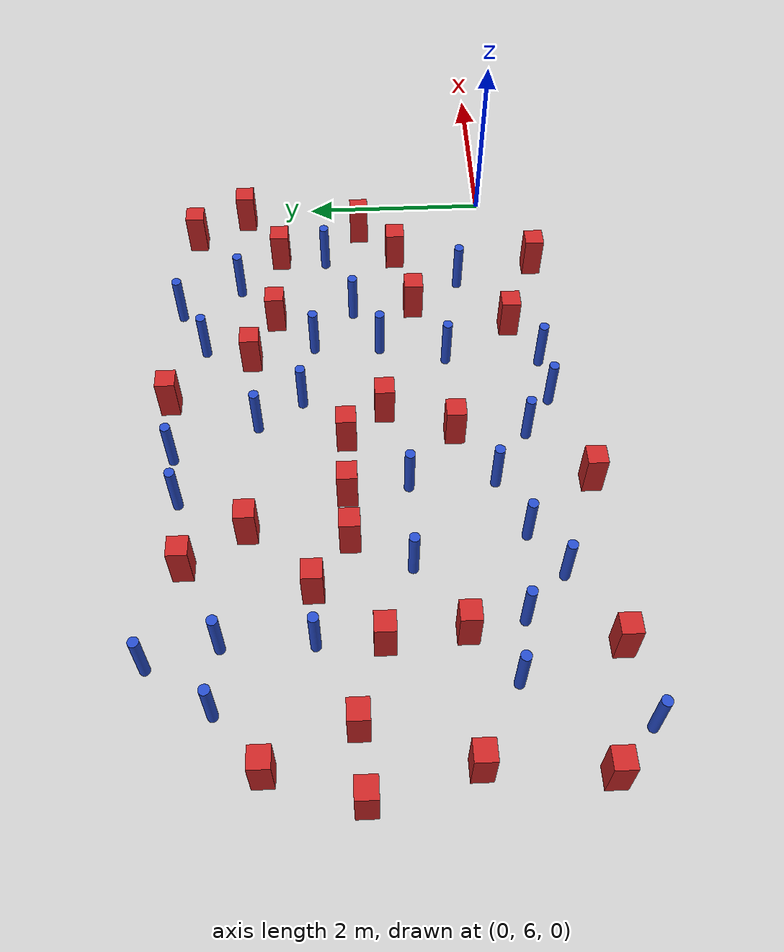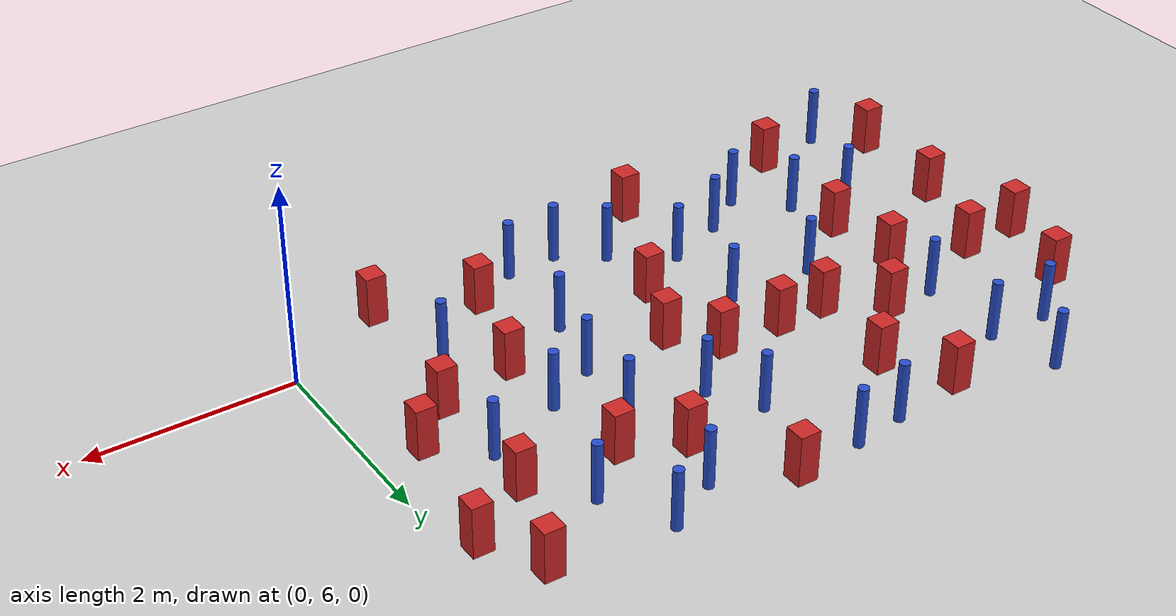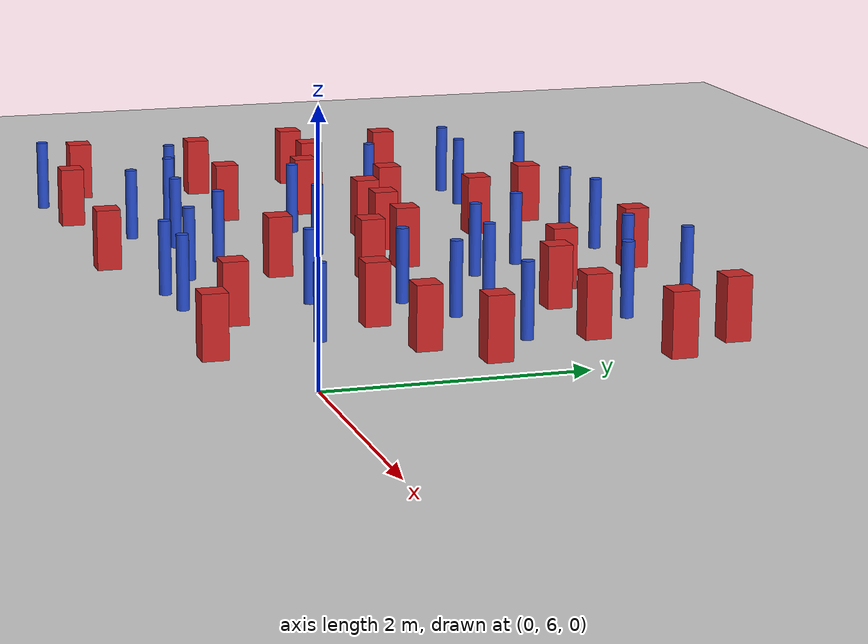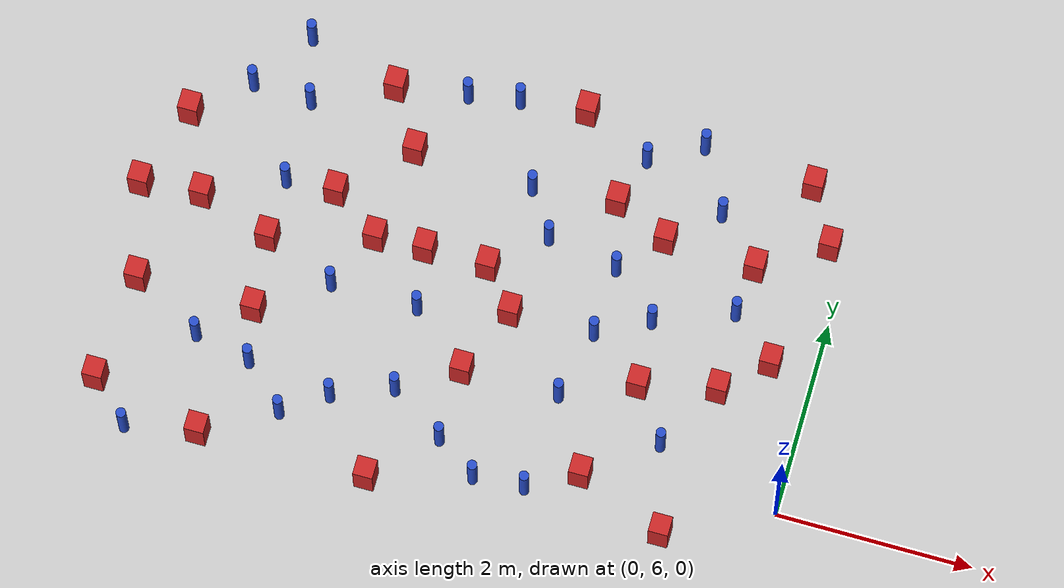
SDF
<sdf version="1.6">
 <world name="default">
  <model name="ground_plane">
   <static>1</static>
   <link name="link">
    <collision name="collision">
     <geometry><plane><normal>0 0 1</normal><size>100 100</size></plane></geometry>
     <surface><friction><ode><mu>100</mu><mu2>50</mu2></ode></friction></surface>
    </collision>
    <visual name="visual">
     <cast_shadows>0</cast_shadows>
     <geometry><plane><normal>0 0 1</normal><size>100 100</size></plane></geometry>
     <material>
      <ambient>1.0 1.0 1.0 1.0</ambient>
      <diffuse>0.8 0.8 0.8 1.0</diffuse>
      <specular>0.01 0.01 0.01 1.000000</specular>
     </material>
    </visual>
   </link>
  </model>
  <model name="square_post_obstacle1">
   <static>true</static>
   <pose>-1.95325736225 5.85002496531 1.91545236811e-07 -7.35059704564e-06 1.12565212e-07 2.39332434364e-05</pose>
   <link name="link">
    <pose>0 0 0.25 0 -0 0</pose>
    <inertial>
     <mass>100</mass>
     <inertia>
      <ixx>0.166667</ixx>
      <ixy>0</ixy>
      <ixz>0</ixz>
      <iyy>0.166667</iyy>
      <iyz>0</iyz>
      <izz>0.166667</izz>
     </inertia>
    </inertial>
    <collision name="collision"><geometry><box><size>.2 .2 .5</size></box></geometry></collision>
    <visual name="visual">
     <geometry><box><size>.2 .2 .5</size></box></geometry>
     <material>
      <script><name>Gazebo/Red</name><uri>file://media/materials/scripts/gazebo.material</uri></script>
     </material>
    </visual>
   </link>
  </model>
  <model name="pole_obstacle1">
   <static>true</static>
   <pose>-2.45084201974 5.56944698751 7.38925637345e-09 -8.47170692798e-08 1.24976765033e-08 -1.74513093019e-07</pose>
   <link name="link">
    <pose>0 0 0.3 0 -0 0</pose>
    <inertial>
     <mass>1</mass>
     <inertia><ixx>0.145833</ixx><ixy>0</ixy><ixz>0</ixz><iyy>0.145833</iyy><iyz>0</iyz><izz>0.125</izz></inertia>
    </inertial>
    <collision name="collision">
     <geometry><cylinder><radius>0.05</radius><length>.6</length></cylinder></geometry>
    </collision>
    <visual name="visual">
     <geometry><cylinder><radius>0.05</radius><length>.6</length></cylinder></geometry>
     <material>
      <script><name>Gazebo/Blue</name><uri>file://media/materials/scripts/gazebo.material</uri></script>
     </material>
    </visual>
   </link>
  </model>
  <model name="square_post_obstacle3">
   <static>true</static>
   <pose>-6.8255019403 5.52040594219 1.91545236811e-07 -7.35059704564e-06 1.12565212e-07 2.39332434364e-05</pose>
   <link name="link">
    <pose>0 0 0.25 0 -0 0</pose>
    <inertial>
     <mass>100</mass>
     <inertia>
      <ixx>0.166667</ixx>
      <ixy>0</ixy>
      <ixz>0</ixz>
      <iyy>0.166667</iyy>
      <iyz>0</iyz>
      <izz>0.166667</izz>
     </inertia>
    </inertial>
    <collision name="collision"><geometry><box><size>.2 .2 .5</size></box></geometry></collision>
    <visual name="visual">
     <geometry><box><size>.2 .2 .5</size></box></geometry>
     <material>
      <script><name>Gazebo/Red</name><uri>file://media/materials/scripts/gazebo.material</uri></script>
     </material>
    </visual>
   </link>
  </model>
  <model name="square_post_obstacle7">
   <static>true</static>
   <pose>-1.78532070272 8.3839280354 1.91545236811e-07 -7.35059704564e-06 1.12565212e-07 2.39332434364e-05</pose>
   <link name="link">
    <pose>0 0 0.25 0 -0 0</pose>
    <inertial>
     <mass>100</mass>
     <inertia>
      <ixx>0.166667</ixx>
      <ixy>0</ixy>
      <ixz>0</ixz>
      <iyy>0.166667</iyy>
      <iyz>0</iyz>
      <izz>0.166667</izz>
     </inertia>
    </inertial>
    <collision name="collision"><geometry><box><size>.2 .2 .5</size></box></geometry></collision>
    <visual name="visual">
     <geometry><box><size>.2 .2 .5</size></box></geometry>
     <material>
      <script><name>Gazebo/Red</name><uri>file://media/materials/scripts/gazebo.material</uri></script>
     </material>
    </visual>
   </link>
  </model>
  <model name="square_post_obstacle8">
   <static>true</static>
   <pose>-4.5635573513 7.63697502963 1.91545236811e-07 -7.35059704564e-06 1.12565212e-07 2.39332434364e-05</pose>
   <link name="link">
    <pose>0 0 0.25 0 -0 0</pose>
    <inertial>
     <mass>100</mass>
     <inertia>
      <ixx>0.166667</ixx>
      <ixy>0</ixy>
      <ixz>0</ixz>
      <iyy>0.166667</iyy>
      <iyz>0</iyz>
      <izz>0.166667</izz>
     </inertia>
    </inertial>
    <collision name="collision"><geometry><box><size>.2 .2 .5</size></box></geometry></collision>
    <visual name="visual">
     <geometry><box><size>.2 .2 .5</size></box></geometry>
     <material>
      <script><name>Gazebo/Red</name><uri>file://media/materials/scripts/gazebo.material</uri></script>
     </material>
    </visual>
   </link>
  </model>
  <model name="square_post_obstacle16">
   <static>true</static>
   <pose>-6.69537280962 8.40024844896 1.91545236811e-07 -7.35059704564e-06 1.12565212e-07 2.39332434364e-05</pose>
   <link name="link">
    <pose>0 0 0.25 0 -0 0</pose>
    <inertial>
     <mass>100</mass>
     <inertia>
      <ixx>0.166667</ixx>
      <ixy>0</ixy>
      <ixz>0</ixz>
      <iyy>0.166667</iyy>
      <iyz>0</iyz>
      <izz>0.166667</izz>
     </inertia>
    </inertial>
    <collision name="collision"><geometry><box><size>.2 .2 .5</size></box></geometry></collision>
    <visual name="visual">
     <geometry><box><size>.2 .2 .5</size></box></geometry>
     <material>
      <script><name>Gazebo/Red</name><uri>file://media/materials/scripts/gazebo.material</uri></script>
     </material>
    </visual>
   </link>
  </model>
  <model name="pole_obstacle20">
   <static>true</static>
   <pose>-2.90265520833 8.0927579224 7.38925637345e-09 -8.47170692793e-08 1.24976764408e-08 -1.74513093041e-07</pose>
   <link name="link">
    <pose>0 0 0.3 0 -0 0</pose>
    <inertial>
     <mass>1</mass>
     <inertia><ixx>0.145833</ixx><ixy>0</ixy><ixz>0</ixz><iyy>0.145833</iyy><iyz>0</iyz><izz>0.125</izz></inertia>
    </inertial>
    <collision name="collision">
     <geometry><cylinder><radius>0.05</radius><length>.6</length></cylinder></geometry>
    </collision>
    <visual name="visual">
     <geometry><cylinder><radius>0.05</radius><length>.6</length></cylinder></geometry>
     <material>
      <script><name>Gazebo/Blue</name><uri>file://media/materials/scripts/gazebo.material</uri></script>
     </material>
    </visual>
   </link>
  </model>
  <model name="pole_obstacle22">
   <static>true</static>
   <pose>-4.85426224401 7.05742693724 7.38925637345e-09 -8.47170692796e-08 1.24976764786e-08 -1.74513093032e-07</pose>
   <link name="link">
    <pose>0 0 0.3 0 -0 0</pose>
    <inertial>
     <mass>1</mass>
     <inertia><ixx>0.145833</ixx><ixy>0</ixy><ixz>0</ixz><iyy>0.145833</iyy><iyz>0</iyz><izz>0.125</izz></inertia>
    </inertial>
    <collision name="collision">
     <geometry><cylinder><radius>0.05</radius><length>.6</length></cylinder></geometry>
    </collision>
    <visual name="visual">
     <geometry><cylinder><radius>0.05</radius><length>.6</length></cylinder></geometry>
     <material>
      <script><name>Gazebo/Blue</name><uri>file://media/materials/scripts/gazebo.material</uri></script>
     </material>
    </visual>
   </link>
  </model>
  <model name="square_post_obstacle38">
   <static>true</static>
   <pose>-3.36489635111 6.5540317531 1.91545236811e-07 -7.35059704564e-06 1.12565212e-07 2.39332434364e-05</pose>
   <link name="link">
    <pose>0 0 0.25 0 -0 0</pose>
    <inertial>
     <mass>100</mass>
     <inertia>
      <ixx>0.166667</ixx>
      <ixy>0</ixy>
      <ixz>0</ixz>
      <iyy>0.166667</iyy>
      <iyz>0</iyz>
      <izz>0.166667</izz>
     </inertia>
    </inertial>
    <collision name="collision"><geometry><box><size>.2 .2 .5</size></box></geometry></collision>
    <visual name="visual">
     <geometry><box><size>.2 .2 .5</size></box></geometry>
     <material>
      <script><name>Gazebo/Red</name><uri>file://media/materials/scripts/gazebo.material</uri></script>
     </material>
    </visual>
   </link>
  </model>
  <model name="square_post_obstacle42">
   <static>true</static>
   <pose>-0.878070782256 7.04222129873 1.91545236811e-07 -7.35059704564e-06 1.12565212e-07 2.39332434364e-05</pose>
   <link name="link">
    <pose>0 0 0.25 0 -0 0</pose>
    <inertial>
     <mass>100</mass>
     <inertia>
      <ixx>0.166667</ixx>
      <ixy>0</ixy>
      <ixz>0</ixz>
      <iyy>0.166667</iyy>
      <iyz>0</iyz>
      <izz>0.166667</izz>
     </inertia>
    </inertial>
    <collision name="collision"><geometry><box><size>.2 .2 .5</size></box></geometry></collision>
    <visual name="visual">
     <geometry><box><size>.2 .2 .5</size></box></geometry>
     <material>
      <script><name>Gazebo/Red</name><uri>file://media/materials/scripts/gazebo.material</uri></script>
     </material>
    </visual>
   </link>
  </model>
  <model name="square_post_obstacle56">
   <static>true</static>
   <pose>-0.449807353054 7.44160900738 1.91545236811e-07 -7.35059704564e-06 1.12565212e-07 2.39332434364e-05</pose>
   <link name="link">
    <pose>0 0 0.25 0 -0 0</pose>
    <inertial>
     <mass>100</mass>
     <inertia>
      <ixx>0.166667</ixx>
      <ixy>0</ixy>
      <ixz>0</ixz>
      <iyy>0.166667</iyy>
      <iyz>0</iyz>
      <izz>0.166667</izz>
     </inertia>
    </inertial>
    <collision name="collision"><geometry><box><size>.2 .2 .5</size></box></geometry></collision>
    <visual name="visual">
     <geometry><box><size>.2 .2 .5</size></box></geometry>
     <material>
      <script><name>Gazebo/Red</name><uri>file://media/materials/scripts/gazebo.material</uri></script>
     </material>
    </visual>
   </link>
  </model>
  <model name="pole_obstacle53">
   <static>true</static>
   <pose>-2.17609621883 7.96631538438 7.38925637345e-09 -8.47170692799e-08 1.24976765031e-08 -1.7451309302e-07</pose>
   <link name="link">
    <pose>0 0 0.3 0 -0 0</pose>
    <inertial>
     <mass>1</mass>
     <inertia><ixx>0.145833</ixx><ixy>0</ixy><ixz>0</ixz><iyy>0.145833</iyy><iyz>0</iyz><izz>0.125</izz></inertia>
    </inertial>
    <collision name="collision">
     <geometry><cylinder><radius>0.05</radius><length>.6</length></cylinder></geometry>
    </collision>
    <visual name="visual">
     <geometry><cylinder><radius>0.05</radius><length>.6</length></cylinder></geometry>
     <material>
      <script><name>Gazebo/Blue</name><uri>file://media/materials/scripts/gazebo.material</uri></script>
     </material>
    </visual>
   </link>
  </model>
  <model name="pole_obstacle58">
   <static>true</static>
   <pose>-5.99651637765 6.20297203327 7.38925637345e-09 -8.47170692796e-08 1.24976764786e-08 -1.74513093032e-07</pose>
   <link name="link">
    <pose>0 0 0.3 0 -0 0</pose>
    <inertial>
     <mass>1</mass>
     <inertia><ixx>0.145833</ixx><ixy>0</ixy><ixz>0</ixz><iyy>0.145833</iyy><iyz>0</iyz><izz>0.125</izz></inertia>
    </inertial>
    <collision name="collision">
     <geometry><cylinder><radius>0.05</radius><length>.6</length></cylinder></geometry>
    </collision>
    <visual name="visual">
     <geometry><cylinder><radius>0.05</radius><length>.6</length></cylinder></geometry>
     <material>
      <script><name>Gazebo/Blue</name><uri>file://media/materials/scripts/gazebo.material</uri></script>
     </material>
    </visual>
   </link>
  </model>
  <model name="pole_obstacle62">
   <static>true</static>
   <pose>-3.94933037781 6.19198998992 7.38925637345e-09 -8.47170692794e-08 1.24976764468e-08 -1.7451309304e-07</pose>
   <link name="link">
    <pose>0 0 0.3 0 -0 0</pose>
    <inertial>
     <mass>1</mass>
     <inertia><ixx>0.145833</ixx><ixy>0</ixy><ixz>0</ixz><iyy>0.145833</iyy><iyz>0</iyz><izz>0.125</izz></inertia>
    </inertial>
    <collision name="collision">
     <geometry><cylinder><radius>0.05</radius><length>.6</length></cylinder></geometry>
    </collision>
    <visual name="visual">
     <geometry><cylinder><radius>0.05</radius><length>.6</length></cylinder></geometry>
     <material>
      <script><name>Gazebo/Blue</name><uri>file://media/materials/scripts/gazebo.material</uri></script>
     </material>
    </visual>
   </link>
  </model>
  <model name="square_post_obstacle67">
   <static>true</static>
   <pose>-0.851390226316 8.34495814027 1.91545236811e-07 -7.35059704564e-06 1.12565212e-07 2.39332434364e-05</pose>
   <link name="link">
    <pose>0 0 0.25 0 -0 0</pose>
    <inertial>
     <mass>100</mass>
     <inertia>
      <ixx>0.166667</ixx>
      <ixy>0</ixy>
      <ixz>0</ixz>
      <iyy>0.166667</iyy>
      <iyz>0</iyz>
      <izz>0.166667</izz>
     </inertia>
    </inertial>
    <collision name="collision"><geometry><box><size>.2 .2 .5</size></box></geometry></collision>
    <visual name="visual">
     <geometry><box><size>.2 .2 .5</size></box></geometry>
     <material>
      <script><name>Gazebo/Red</name><uri>file://media/materials/scripts/gazebo.material</uri></script>
     </material>
    </visual>
   </link>
  </model>
  <model name="pole_obstacle67">
   <static>true</static>
   <pose>-3.38901248422 5.82271786152 7.38925637345e-09 -8.47170692798e-08 1.24976765033e-08 -1.74513093019e-07</pose>
   <link name="link">
    <pose>0 0 0.3 0 -0 0</pose>
    <inertial>
     <mass>1</mass>
     <inertia><ixx>0.145833</ixx><ixy>0</ixy><ixz>0</ixz><iyy>0.145833</iyy><iyz>0</iyz><izz>0.125</izz></inertia>
    </inertial>
    <collision name="collision">
     <geometry><cylinder><radius>0.05</radius><length>.6</length></cylinder></geometry>
    </collision>
    <visual name="visual">
     <geometry><cylinder><radius>0.05</radius><length>.6</length></cylinder></geometry>
     <material>
      <script><name>Gazebo/Blue</name><uri>file://media/materials/scripts/gazebo.material</uri></script>
     </material>
    </visual>
   </link>
  </model>
  <model name="square_post_obstacle78">
   <static>true</static>
   <pose>-3.06652978352 7.25143272821 1.91545236811e-07 -7.35059704564e-06 1.12565212e-07 2.39332434364e-05</pose>
   <link name="link">
    <pose>0 0 0.25 0 -0 0</pose>
    <inertial>
     <mass>100</mass>
     <inertia>
      <ixx>0.166667</ixx>
      <ixy>0</ixy>
      <ixz>0</ixz>
      <iyy>0.166667</iyy>
      <iyz>0</iyz>
      <izz>0.166667</izz>
     </inertia>
    </inertial>
    <collision name="collision"><geometry><box><size>.2 .2 .5</size></box></geometry></collision>
    <visual name="visual">
     <geometry><box><size>.2 .2 .5</size></box></geometry>
     <material>
      <script><name>Gazebo/Red</name><uri>file://media/materials/scripts/gazebo.material</uri></script>
     </material>
    </visual>
   </link>
  </model>
  <model name="pole_obstacle84">
   <static>true</static>
   <pose>-4.98611328214 5.66036942069 7.38925637345e-09 -8.47170692796e-08 1.24976764786e-08 -1.74513093032e-07</pose>
   <link name="link">
    <pose>0 0 0.3 0 -0 0</pose>
    <inertial>
     <mass>1</mass>
     <inertia><ixx>0.145833</ixx><ixy>0</ixy><ixz>0</ixz><iyy>0.145833</iyy><iyz>0</iyz><izz>0.125</izz></inertia>
    </inertial>
    <collision name="collision">
     <geometry><cylinder><radius>0.05</radius><length>.6</length></cylinder></geometry>
    </collision>
    <visual name="visual">
     <geometry><cylinder><radius>0.05</radius><length>.6</length></cylinder></geometry>
     <material>
      <script><name>Gazebo/Blue</name><uri>file://media/materials/scripts/gazebo.material</uri></script>
     </material>
    </visual>
   </link>
  </model>
  <model name="pole_obstacle99">
   <static>true</static>
   <pose>-3.19912108964 8.54629579582 7.38925637345e-09 -8.47170692793e-08 1.24976764408e-08 -1.74513093041e-07</pose>
   <link name="link">
    <pose>0 0 0.3 0 -0 0</pose>
    <inertial>
     <mass>1</mass>
     <inertia><ixx>0.145833</ixx><ixy>0</ixy><ixz>0</ixz><iyy>0.145833</iyy><iyz>0</iyz><izz>0.125</izz></inertia>
    </inertial>
    <collision name="collision">
     <geometry><cylinder><radius>0.05</radius><length>.6</length></cylinder></geometry>
    </collision>
    <visual name="visual">
     <geometry><cylinder><radius>0.05</radius><length>.6</length></cylinder></geometry>
     <material>
      <script><name>Gazebo/Blue</name><uri>file://media/materials/scripts/gazebo.material</uri></script>
     </material>
    </visual>
   </link>
  </model>
  <model name="pole_obstacle100">
   <static>true</static>
   <pose>-3.96489721537 7.04676653271 7.38925637345e-09 -8.471706928e-08 1.24976765147e-08 -1.74513093014e-07</pose>
   <link name="link">
    <pose>0 0 0.3 0 -0 0</pose>
    <inertial>
     <mass>1</mass>
     <inertia><ixx>0.145833</ixx><ixy>0</ixy><ixz>0</ixz><iyy>0.145833</iyy><iyz>0</iyz><izz>0.125</izz></inertia>
    </inertial>
    <collision name="collision">
     <geometry><cylinder><radius>0.05</radius><length>.6</length></cylinder></geometry>
    </collision>
    <visual name="visual">
     <geometry><cylinder><radius>0.05</radius><length>.6</length></cylinder></geometry>
     <material>
      <script><name>Gazebo/Blue</name><uri>file://media/materials/scripts/gazebo.material</uri></script>
     </material>
    </visual>
   </link>
  </model>
  <model name="square_post_obstacle89">
   <static>true</static>
   <pose>-4.79048570503 9.1884379406 1.91545236811e-07 -7.35059704564e-06 1.12565212e-07 2.39332434364e-05</pose>
   <link name="link">
    <pose>0 0 0.25 0 -0 0</pose>
    <inertial>
     <mass>100</mass>
     <inertia>
      <ixx>0.166667</ixx>
      <ixy>0</ixy>
      <ixz>0</ixz>
      <iyy>0.166667</iyy>
      <iyz>0</iyz>
      <izz>0.166667</izz>
     </inertia>
    </inertial>
    <collision name="collision"><geometry><box><size>.2 .2 .5</size></box></geometry></collision>
    <visual name="visual">
     <geometry><box><size>.2 .2 .5</size></box></geometry>
     <material>
      <script><name>Gazebo/Red</name><uri>file://media/materials/scripts/gazebo.material</uri></script>
     </material>
    </visual>
   </link>
  </model>
  <model name="square_post_obstacle94">
   <static>true</static>
   <pose>-1.64861381105 6.87692610729 1.91545236811e-07 -7.35059704564e-06 1.12565212e-07 2.39332434364e-05</pose>
   <link name="link">
    <pose>0 0 0.25 0 -0 0</pose>
    <inertial>
     <mass>100</mass>
     <inertia>
      <ixx>0.166667</ixx>
      <ixy>0</ixy>
      <ixz>0</ixz>
      <iyy>0.166667</iyy>
      <iyz>0</iyz>
      <izz>0.166667</izz>
     </inertia>
    </inertial>
    <collision name="collision"><geometry><box><size>.2 .2 .5</size></box></geometry></collision>
    <visual name="visual">
     <geometry><box><size>.2 .2 .5</size></box></geometry>
     <material>
      <script><name>Gazebo/Red</name><uri>file://media/materials/scripts/gazebo.material</uri></script>
     </material>
    </visual>
   </link>
  </model>
  <model name="square_post_obstacle98">
   <static>true</static>
   <pose>-4.43006646898 8.60576593966 1.91545236811e-07 -7.35059704564e-06 1.12565212e-07 2.39332434364e-05</pose>
   <link name="link">
    <pose>0 0 0.25 0 -0 0</pose>
    <inertial>
     <mass>100</mass>
     <inertia>
      <ixx>0.166667</ixx>
      <ixy>0</ixy>
      <ixz>0</ixz>
      <iyy>0.166667</iyy>
      <iyz>0</iyz>
      <izz>0.166667</izz>
     </inertia>
    </inertial>
    <collision name="collision"><geometry><box><size>.2 .2 .5</size></box></geometry></collision>
    <visual name="visual">
     <geometry><box><size>.2 .2 .5</size></box></geometry>
     <material>
      <script><name>Gazebo/Red</name><uri>file://media/materials/scripts/gazebo.material</uri></script>
     </material>
    </visual>
   </link>
  </model>
  <model name="pole_obstacle115">
   <static>true</static>
   <pose>-2.96861705959 5.53677465467 7.38925637345e-09 -8.47170692798e-08 1.24976765033e-08 -1.74513093019e-07</pose>
   <link name="link">
    <pose>0 0 0.3 0 -0 0</pose>
    <inertial>
     <mass>1</mass>
     <inertia><ixx>0.145833</ixx><ixy>0</ixy><ixz>0</ixz><iyy>0.145833</iyy><iyz>0</iyz><izz>0.125</izz></inertia>
    </inertial>
    <collision name="collision">
     <geometry><cylinder><radius>0.05</radius><length>.6</length></cylinder></geometry>
    </collision>
    <visual name="visual">
     <geometry><cylinder><radius>0.05</radius><length>.6</length></cylinder></geometry>
     <material>
      <script><name>Gazebo/Blue</name><uri>file://media/materials/scripts/gazebo.material</uri></script>
     </material>
    </visual>
   </link>
  </model>
  <model name="square_post_obstacle102">
   <static>true</static>
   <pose>-1.04320564459 5.48591085215 1.91545236811e-07 -7.35059704564e-06 1.12565212e-07 2.39332434364e-05</pose>
   <link name="link">
    <pose>0 0 0.25 0 -0 0</pose>
    <inertial>
     <mass>100</mass>
     <inertia>
      <ixx>0.166667</ixx>
      <ixy>0</ixy>
      <ixz>0</ixz>
      <iyy>0.166667</iyy>
      <iyz>0</iyz>
      <izz>0.166667</izz>
     </inertia>
    </inertial>
    <collision name="collision"><geometry><box><size>.2 .2 .5</size></box></geometry></collision>
    <visual name="visual">
     <geometry><box><size>.2 .2 .5</size></box></geometry>
     <material>
      <script><name>Gazebo/Red</name><uri>file://media/materials/scripts/gazebo.material</uri></script>
     </material>
    </visual>
   </link>
  </model>
  <model name="square_post_obstacle104">
   <static>true</static>
   <pose>-5.70126849819 5.25448050112 1.91545236811e-07 -7.35059704564e-06 1.12565212e-07 2.39332434364e-05</pose>
   <link name="link">
    <pose>0 0 0.25 0 -0 0</pose>
    <inertial>
     <mass>100</mass>
     <inertia>
      <ixx>0.166667</ixx>
      <ixy>0</ixy>
      <ixz>0</ixz>
      <iyy>0.166667</iyy>
      <iyz>0</iyz>
      <izz>0.166667</izz>
     </inertia>
    </inertial>
    <collision name="collision"><geometry><box><size>.2 .2 .5</size></box></geometry></collision>
    <visual name="visual">
     <geometry><box><size>.2 .2 .5</size></box></geometry>
     <material>
      <script><name>Gazebo/Red</name><uri>file://media/materials/scripts/gazebo.material</uri></script>
     </material>
    </visual>
   </link>
  </model>
  <model name="square_post_obstacle107">
   <static>true</static>
   <pose>-6.71844986702 6.60887199454 1.91545236811e-07 -7.35059704564e-06 1.12565212e-07 2.39332434364e-05</pose>
   <link name="link">
    <pose>0 0 0.25 0 -0 0</pose>
    <inertial>
     <mass>100</mass>
     <inertia>
      <ixx>0.166667</ixx>
      <ixy>0</ixy>
      <ixz>0</ixz>
      <iyy>0.166667</iyy>
      <iyz>0</iyz>
      <izz>0.166667</izz>
     </inertia>
    </inertial>
    <collision name="collision"><geometry><box><size>.2 .2 .5</size></box></geometry></collision>
    <visual name="visual">
     <geometry><box><size>.2 .2 .5</size></box></geometry>
     <material>
      <script><name>Gazebo/Red</name><uri>file://media/materials/scripts/gazebo.material</uri></script>
     </material>
    </visual>
   </link>
  </model>
  <model name="pole_obstacle126">
   <static>true</static>
   <pose>-2.37767435409 6.56397256656 7.38925637345e-09 -8.47170692798e-08 1.24976765033e-08 -1.74513093019e-07</pose>
   <link name="link">
    <pose>0 0 0.3 0 -0 0</pose>
    <inertial>
     <mass>1</mass>
     <inertia><ixx>0.145833</ixx><ixy>0</ixy><ixz>0</ixz><iyy>0.145833</iyy><iyz>0</iyz><izz>0.125</izz></inertia>
    </inertial>
    <collision name="collision">
     <geometry><cylinder><radius>0.05</radius><length>.6</length></cylinder></geometry>
    </collision>
    <visual name="visual">
     <geometry><cylinder><radius>0.05</radius><length>.6</length></cylinder></geometry>
     <material>
      <script><name>Gazebo/Blue</name><uri>file://media/materials/scripts/gazebo.material</uri></script>
     </material>
    </visual>
   </link>
  </model>
  <model name="square_post_obstacle116">
   <static>true</static>
   <pose>-0.197021590138 8.7569889888 1.91545236811e-07 -7.35059704564e-06 1.12565212e-07 2.39332434364e-05</pose>
   <link name="link">
    <pose>0 0 0.25 0 -0 0</pose>
    <inertial>
     <mass>100</mass>
     <inertia>
      <ixx>0.166667</ixx>
      <ixy>0</ixy>
      <ixz>0</ixz>
      <iyy>0.166667</iyy>
      <iyz>0</iyz>
      <izz>0.166667</izz>
     </inertia>
    </inertial>
    <collision name="collision"><geometry><box><size>.2 .2 .5</size></box></geometry></collision>
    <visual name="visual">
     <geometry><box><size>.2 .2 .5</size></box></geometry>
     <material>
      <script><name>Gazebo/Red</name><uri>file://media/materials/scripts/gazebo.material</uri></script>
     </material>
    </visual>
   </link>
  </model>
  <model name="square_post_obstacle118">
   <static>true</static>
   <pose>-6.96458356621 7.55827440751 1.91545236811e-07 -7.35059704564e-06 1.12565212e-07 2.39332434364e-05</pose>
   <link name="link">
    <pose>0 0 0.25 0 -0 0</pose>
    <inertial>
     <mass>100</mass>
     <inertia>
      <ixx>0.166667</ixx>
      <ixy>0</ixy>
      <ixz>0</ixz>
      <iyy>0.166667</iyy>
      <iyz>0</iyz>
      <izz>0.166667</izz>
     </inertia>
    </inertial>
    <collision name="collision"><geometry><box><size>.2 .2 .5</size></box></geometry></collision>
    <visual name="visual">
     <geometry><box><size>.2 .2 .5</size></box></geometry>
     <material>
      <script><name>Gazebo/Red</name><uri>file://media/materials/scripts/gazebo.material</uri></script>
     </material>
    </visual>
   </link>
  </model>
  <model name="pole_obstacle137">
   <static>true</static>
   <pose>-2.21173117754 7.26631993955 7.38925637345e-09 -8.47170692798e-08 1.24976765033e-08 -1.74513093019e-07</pose>
   <link name="link">
    <pose>0 0 0.3 0 -0 0</pose>
    <inertial>
     <mass>1</mass>
     <inertia><ixx>0.145833</ixx><ixy>0</ixy><ixz>0</ixz><iyy>0.145833</iyy><iyz>0</iyz><izz>0.125</izz></inertia>
    </inertial>
    <collision name="collision">
     <geometry><cylinder><radius>0.05</radius><length>.6</length></cylinder></geometry>
    </collision>
    <visual name="visual">
     <geometry><cylinder><radius>0.05</radius><length>.6</length></cylinder></geometry>
     <material>
      <script><name>Gazebo/Blue</name><uri>file://media/materials/scripts/gazebo.material</uri></script>
     </material>
    </visual>
   </link>
  </model>
  <model name="square_post_obstacle128">
   <static>true</static>
   <pose>-3.97936162897 5.25920833258 1.91545236811e-07 -7.35059704564e-06 1.12565212e-07 2.39332434364e-05</pose>
   <link name="link">
    <pose>0 0 0.25 0 -0 0</pose>
    <inertial>
     <mass>100</mass>
     <inertia>
      <ixx>0.166667</ixx>
      <ixy>0</ixy>
      <ixz>0</ixz>
      <iyy>0.166667</iyy>
      <iyz>0</iyz>
      <izz>0.166667</izz>
     </inertia>
    </inertial>
    <collision name="collision"><geometry><box><size>.2 .2 .5</size></box></geometry></collision>
    <visual name="visual">
     <geometry><box><size>.2 .2 .5</size></box></geometry>
     <material>
      <script><name>Gazebo/Red</name><uri>file://media/materials/scripts/gazebo.material</uri></script>
     </material>
    </visual>
   </link>
  </model>
  <model name="square_post_obstacle129">
   <static>true</static>
   <pose>-5.59324449979 7.35337747903 1.91545236811e-07 -7.35059704564e-06 1.12565212e-07 2.39332434364e-05</pose>
   <link name="link">
    <pose>0 0 0.25 0 -0 0</pose>
    <inertial>
     <mass>100</mass>
     <inertia>
      <ixx>0.166667</ixx>
      <ixy>0</ixy>
      <ixz>0</ixz>
      <iyy>0.166667</iyy>
      <iyz>0</iyz>
      <izz>0.166667</izz>
     </inertia>
    </inertial>
    <collision name="collision"><geometry><box><size>.2 .2 .5</size></box></geometry></collision>
    <visual name="visual">
     <geometry><box><size>.2 .2 .5</size></box></geometry>
     <material>
      <script><name>Gazebo/Red</name><uri>file://media/materials/scripts/gazebo.material</uri></script>
     </material>
    </visual>
   </link>
  </model>
  <model name="pole_obstacle148">
   <static>true</static>
   <pose>-1.65540529877 9.42078620412 7.38925637345e-09 -8.47170692798e-08 1.24976764881e-08 -1.74513093027e-07</pose>
   <link name="link">
    <pose>0 0 0.3 0 -0 0</pose>
    <inertial>
     <mass>1</mass>
     <inertia><ixx>0.145833</ixx><ixy>0</ixy><ixz>0</ixz><iyy>0.145833</iyy><iyz>0</iyz><izz>0.125</izz></inertia>
    </inertial>
    <collision name="collision">
     <geometry><cylinder><radius>0.05</radius><length>.6</length></cylinder></geometry>
    </collision>
    <visual name="visual">
     <geometry><cylinder><radius>0.05</radius><length>.6</length></cylinder></geometry>
     <material>
      <script><name>Gazebo/Blue</name><uri>file://media/materials/scripts/gazebo.material</uri></script>
     </material>
    </visual>
   </link>
  </model>
  <model name="square_post_obstacle137">
   <static>true</static>
   <pose>-2.88212377354 9.45528121599 1.91545236811e-07 -7.35059704564e-06 1.12565212e-07 2.39332434364e-05</pose>
   <link name="link">
    <pose>0 0 0.25 0 -0 0</pose>
    <inertial>
     <mass>100</mass>
     <inertia>
      <ixx>0.166667</ixx>
      <ixy>0</ixy>
      <ixz>0</ixz>
      <iyy>0.166667</iyy>
      <iyz>0</iyz>
      <izz>0.166667</izz>
     </inertia>
    </inertial>
    <collision name="collision"><geometry><box><size>.2 .2 .5</size></box></geometry></collision>
    <visual name="visual">
     <geometry><box><size>.2 .2 .5</size></box></geometry>
     <material>
      <script><name>Gazebo/Red</name><uri>file://media/materials/scripts/gazebo.material</uri></script>
     </material>
    </visual>
   </link>
  </model>
  <model name="square_post_obstacle138">
   <static>true</static>
   <pose>-0.508752533817 9.31251403271 1.91545236811e-07 -7.35059704564e-06 1.12565212e-07 2.39332434364e-05</pose>
   <link name="link">
    <pose>0 0 0.25 0 -0 0</pose>
    <inertial>
     <mass>100</mass>
     <inertia>
      <ixx>0.166667</ixx>
      <ixy>0</ixy>
      <ixz>0</ixz>
      <iyy>0.166667</iyy>
      <iyz>0</iyz>
      <izz>0.166667</izz>
     </inertia>
    </inertial>
    <collision name="collision"><geometry><box><size>.2 .2 .5</size></box></geometry></collision>
    <visual name="visual">
     <geometry><box><size>.2 .2 .5</size></box></geometry>
     <material>
      <script><name>Gazebo/Red</name><uri>file://media/materials/scripts/gazebo.material</uri></script>
     </material>
    </visual>
   </link>
  </model>
  <model name="square_post_obstacle150">
   <static>true</static>
   <pose>-2.3443342941 8.63189723046 1.91545236811e-07 -7.35059704564e-06 1.12565212e-07 2.39332434364e-05</pose>
   <link name="link">
    <pose>0 0 0.25 0 -0 0</pose>
    <inertial>
     <mass>100</mass>
     <inertia>
      <ixx>0.166667</ixx>
      <ixy>0</ixy>
      <ixz>0</ixz>
      <iyy>0.166667</iyy>
      <iyz>0</iyz>
      <izz>0.166667</izz>
     </inertia>
    </inertial>
    <collision name="collision"><geometry><box><size>.2 .2 .5</size></box></geometry></collision>
    <visual name="visual">
     <geometry><box><size>.2 .2 .5</size></box></geometry>
     <material>
      <script><name>Gazebo/Red</name><uri>file://media/materials/scripts/gazebo.material</uri></script>
     </material>
    </visual>
   </link>
  </model>
  <model name="pole_obstacle166">
   <static>true</static>
   <pose>-1.27787666359 6.35160548766 7.38925637345e-09 -8.47170692799e-08 1.24976765033e-08 -1.74513093018e-07</pose>
   <link name="link">
    <pose>0 0 0.3 0 -0 0</pose>
    <inertial>
     <mass>1</mass>
     <inertia><ixx>0.145833</ixx><ixy>0</ixy><ixz>0</ixz><iyy>0.145833</iyy><iyz>0</iyz><izz>0.125</izz></inertia>
    </inertial>
    <collision name="collision">
     <geometry><cylinder><radius>0.05</radius><length>.6</length></cylinder></geometry>
    </collision>
    <visual name="visual">
     <geometry><cylinder><radius>0.05</radius><length>.6</length></cylinder></geometry>
     <material>
      <script><name>Gazebo/Blue</name><uri>file://media/materials/scripts/gazebo.material</uri></script>
     </material>
    </visual>
   </link>
  </model>
  <model name="square_post_obstacle160">
   <static>true</static>
   <pose>-3.40759884699 7.64602725493 1.91545236811e-07 -7.35059704564e-06 1.12565212e-07 2.39332434364e-05</pose>
   <link name="link">
    <pose>0 0 0.25 0 -0 0</pose>
    <inertial>
     <mass>100</mass>
     <inertia>
      <ixx>0.166667</ixx>
      <ixy>0</ixy>
      <ixz>0</ixz>
      <iyy>0.166667</iyy>
      <iyz>0</iyz>
      <izz>0.166667</izz>
     </inertia>
    </inertial>
    <collision name="collision"><geometry><box><size>.2 .2 .5</size></box></geometry></collision>
    <visual name="visual">
     <geometry><box><size>.2 .2 .5</size></box></geometry>
     <material>
      <script><name>Gazebo/Red</name><uri>file://media/materials/scripts/gazebo.material</uri></script>
     </material>
    </visual>
   </link>
  </model>
  <model name="square_post_obstacle168">
   <static>true</static>
   <pose>-4.05451846791 7.6515135456 1.91545236811e-07 -7.35059704564e-06 1.12565212e-07 2.39332434364e-05</pose>
   <link name="link">
    <pose>0 0 0.25 0 -0 0</pose>
    <inertial>
     <mass>100</mass>
     <inertia>
      <ixx>0.166667</ixx>
      <ixy>0</ixy>
      <ixz>0</ixz>
      <iyy>0.166667</iyy>
      <iyz>0</iyz>
      <izz>0.166667</izz>
     </inertia>
    </inertial>
    <collision name="collision"><geometry><box><size>.2 .2 .5</size></box></geometry></collision>
    <visual name="visual">
     <geometry><box><size>.2 .2 .5</size></box></geometry>
     <material>
      <script><name>Gazebo/Red</name><uri>file://media/materials/scripts/gazebo.material</uri></script>
     </material>
    </visual>
   </link>
  </model>
  <model name="pole_obstacle187">
   <static>true</static>
   <pose>-6.17361557935 8.84618609596 7.38925637345e-09 -8.471706928e-08 1.24976765081e-08 -1.74513093015e-07</pose>
   <link name="link">
    <pose>0 0 0.3 0 -0 0</pose>
    <inertial>
     <mass>1</mass>
     <inertia><ixx>0.145833</ixx><ixy>0</ixy><ixz>0</ixz><iyy>0.145833</iyy><iyz>0</iyz><izz>0.125</izz></inertia>
    </inertial>
    <collision name="collision">
     <geometry><cylinder><radius>0.05</radius><length>.6</length></cylinder></geometry>
    </collision>
    <visual name="visual">
     <geometry><cylinder><radius>0.05</radius><length>.6</length></cylinder></geometry>
     <material>
      <script><name>Gazebo/Blue</name><uri>file://media/materials/scripts/gazebo.material</uri></script>
     </material>
    </visual>
   </link>
  </model>
  <model name="square_post_obstacle178">
   <static>true</static>
   <pose>-5.52145429449 6.61003491353 1.91545236811e-07 -7.35059704564e-06 1.12565212e-07 2.39332434364e-05</pose>
   <link name="link">
    <pose>0 0 0.25 0 -0 0</pose>
    <inertial>
     <mass>100</mass>
     <inertia>
      <ixx>0.166667</ixx>
      <ixy>0</ixy>
      <ixz>0</ixz>
      <iyy>0.166667</iyy>
      <iyz>0</iyz>
      <izz>0.166667</izz>
     </inertia>
    </inertial>
    <collision name="collision"><geometry><box><size>.2 .2 .5</size></box></geometry></collision>
    <visual name="visual">
     <geometry><box><size>.2 .2 .5</size></box></geometry>
     <material>
      <script><name>Gazebo/Red</name><uri>file://media/materials/scripts/gazebo.material</uri></script>
     </material>
    </visual>
   </link>
  </model>
  <model name="square_post_obstacle179">
   <static>true</static>
   <pose>-5.06827118905 7.98481143846 1.91545236811e-07 -7.35059704564e-06 1.12565212e-07 2.39332434364e-05</pose>
   <link name="link">
    <pose>0 0 0.25 0 -0 0</pose>
    <inertial>
     <mass>100</mass>
     <inertia>
      <ixx>0.166667</ixx>
      <ixy>0</ixy>
      <ixz>0</ixz>
      <iyy>0.166667</iyy>
      <iyz>0</iyz>
      <izz>0.166667</izz>
     </inertia>
    </inertial>
    <collision name="collision"><geometry><box><size>.2 .2 .5</size></box></geometry></collision>
    <visual name="visual">
     <geometry><box><size>.2 .2 .5</size></box></geometry>
     <material>
      <script><name>Gazebo/Red</name><uri>file://media/materials/scripts/gazebo.material</uri></script>
     </material>
    </visual>
   </link>
  </model>
  <model name="square_post_obstacle186">
   <static>true</static>
   <pose>-6.3444730515 7.60403579551 1.91545236811e-07 -7.35059704564e-06 1.12565212e-07 2.39332434364e-05</pose>
   <link name="link">
    <pose>0 0 0.25 0 -0 0</pose>
    <inertial>
     <mass>100</mass>
     <inertia>
      <ixx>0.166667</ixx>
      <ixy>0</ixy>
      <ixz>0</ixz>
      <iyy>0.166667</iyy>
      <iyz>0</iyz>
      <izz>0.166667</izz>
     </inertia>
    </inertial>
    <collision name="collision"><geometry><box><size>.2 .2 .5</size></box></geometry></collision>
    <visual name="visual">
     <geometry><box><size>.2 .2 .5</size></box></geometry>
     <material>
      <script><name>Gazebo/Red</name><uri>file://media/materials/scripts/gazebo.material</uri></script>
     </material>
    </visual>
   </link>
  </model>
  <model name="pole_obstacle189">
   <static>true</static>
   <pose>-5.73912038375 9.46230220549 7.38925637345e-09 -8.471706928e-08 1.24976765081e-08 -1.74513093015e-07</pose>
   <link name="link">
    <pose>0 0 0.3 0 -0 0</pose>
    <inertial>
     <mass>1</mass>
     <inertia><ixx>0.145833</ixx><ixy>0</ixy><ixz>0</ixz><iyy>0.145833</iyy><iyz>0</iyz><izz>0.125</izz></inertia>
    </inertial>
    <collision name="collision">
     <geometry><cylinder><radius>0.05</radius><length>.6</length></cylinder></geometry>
    </collision>
    <visual name="visual">
     <geometry><cylinder><radius>0.05</radius><length>.6</length></cylinder></geometry>
     <material>
      <script><name>Gazebo/Blue</name><uri>file://media/materials/scripts/gazebo.material</uri></script>
     </material>
    </visual>
   </link>
  </model>
  <model name="pole_obstacle190">
   <static>true</static>
   <pose>-4.07530799635 9.29988781479 7.38925637345e-09 -8.471706928e-08 1.24976765081e-08 -1.74513093015e-07</pose>
   <link name="link">
    <pose>0 0 0.3 0 -0 0</pose>
    <inertial>
     <mass>1</mass>
     <inertia><ixx>0.145833</ixx><ixy>0</ixy><ixz>0</ixz><iyy>0.145833</iyy><iyz>0</iyz><izz>0.125</izz></inertia>
    </inertial>
    <collision name="collision">
     <geometry><cylinder><radius>0.05</radius><length>.6</length></cylinder></geometry>
    </collision>
    <visual name="visual">
     <geometry><cylinder><radius>0.05</radius><length>.6</length></cylinder></geometry>
     <material>
      <script><name>Gazebo/Blue</name><uri>file://media/materials/scripts/gazebo.material</uri></script>
     </material>
    </visual>
   </link>
  </model>
  <model name="pole_obstacle192">
   <static>true</static>
   <pose>-6.42437482197 5.11905683499 7.38925637345e-09 -8.47170692796e-08 1.24976764786e-08 -1.74513093032e-07</pose>
   <link name="link">
    <pose>0 0 0.3 0 -0 0</pose>
    <inertial>
     <mass>1</mass>
     <inertia><ixx>0.145833</ixx><ixy>0</ixy><ixz>0</ixz><iyy>0.145833</iyy><iyz>0</iyz><izz>0.125</izz></inertia>
    </inertial>
    <collision name="collision">
     <geometry><cylinder><radius>0.05</radius><length>.6</length></cylinder></geometry>
    </collision>
    <visual name="visual">
     <geometry><cylinder><radius>0.05</radius><length>.6</length></cylinder></geometry>
     <material>
      <script><name>Gazebo/Blue</name><uri>file://media/materials/scripts/gazebo.material</uri></script>
     </material>
    </visual>
   </link>
  </model>
  <model name="pole_obstacle194">
   <static>true</static>
   <pose>-4.55020999942 5.95591460946 7.38925637345e-09 -8.47170692796e-08 1.24976764786e-08 -1.74513093032e-07</pose>
   <link name="link">
    <pose>0 0 0.3 0 -0 0</pose>
    <inertial>
     <mass>1</mass>
     <inertia><ixx>0.145833</ixx><ixy>0</ixy><ixz>0</ixz><iyy>0.145833</iyy><iyz>0</iyz><izz>0.125</izz></inertia>
    </inertial>
    <collision name="collision">
     <geometry><cylinder><radius>0.05</radius><length>.6</length></cylinder></geometry>
    </collision>
    <visual name="visual">
     <geometry><cylinder><radius>0.05</radius><length>.6</length></cylinder></geometry>
     <material>
      <script><name>Gazebo/Blue</name><uri>file://media/materials/scripts/gazebo.material</uri></script>
     </material>
    </visual>
   </link>
  </model>
  <model name="pole_obstacle195">
   <static>true</static>
   <pose>-5.57060130543 8.81737616087 7.38925637345e-09 -8.471706928e-08 1.24976765081e-08 -1.74513093015e-07</pose>
   <link name="link">
    <pose>0 0 0.3 0 -0 0</pose>
    <inertial>
     <mass>1</mass>
     <inertia><ixx>0.145833</ixx><ixy>0</ixy><ixz>0</ixz><iyy>0.145833</iyy><iyz>0</iyz><izz>0.125</izz></inertia>
    </inertial>
    <collision name="collision">
     <geometry><cylinder><radius>0.05</radius><length>.6</length></cylinder></geometry>
    </collision>
    <visual name="visual">
     <geometry><cylinder><radius>0.05</radius><length>.6</length></cylinder></geometry>
     <material>
      <script><name>Gazebo/Blue</name><uri>file://media/materials/scripts/gazebo.material</uri></script>
     </material>
    </visual>
   </link>
  </model>
  <model name="pole_obstacle201">
   <static>true</static>
   <pose>-5.41719539099 6.07794603211 7.38925637345e-09 -8.47170692796e-08 1.24976764786e-08 -1.74513093032e-07</pose>
   <link name="link">
    <pose>0 0 0.3 0 -0 0</pose>
    <inertial>
     <mass>1</mass>
     <inertia><ixx>0.145833</ixx><ixy>0</ixy><ixz>0</ixz><iyy>0.145833</iyy><iyz>0</iyz><izz>0.125</izz></inertia>
    </inertial>
    <collision name="collision">
     <geometry><cylinder><radius>0.05</radius><length>.6</length></cylinder></geometry>
    </collision>
    <visual name="visual">
     <geometry><cylinder><radius>0.05</radius><length>.6</length></cylinder></geometry>
     <material>
      <script><name>Gazebo/Blue</name><uri>file://media/materials/scripts/gazebo.material</uri></script>
     </material>
    </visual>
   </link>
  </model>
  <model name="pole_obstacle202">
   <static>true</static>
   <pose>-3.55777592642 9.38492189462 7.38925637345e-09 -8.47170692793e-08 1.24976764408e-08 -1.74513093041e-07</pose>
   <link name="link">
    <pose>0 0 0.3 0 -0 0</pose>
    <inertial>
     <mass>1</mass>
     <inertia><ixx>0.145833</ixx><ixy>0</ixy><ixz>0</ixz><iyy>0.145833</iyy><iyz>0</iyz><izz>0.125</izz></inertia>
    </inertial>
    <collision name="collision">
     <geometry><cylinder><radius>0.05</radius><length>.6</length></cylinder></geometry>
    </collision>
    <visual name="visual">
     <geometry><cylinder><radius>0.05</radius><length>.6</length></cylinder></geometry>
     <material>
      <script><name>Gazebo/Blue</name><uri>file://media/materials/scripts/gazebo.material</uri></script>
     </material>
    </visual>
   </link>
  </model>
  <model name="pole_obstacle208">
   <static>true</static>
   <pose>-5.58026075843 7.96524653332 7.38925637345e-09 -8.47170692799e-08 1.24976765036e-08 -1.74513093018e-07</pose>
   <link name="link">
    <pose>0 0 0.3 0 -0 0</pose>
    <inertial>
     <mass>1</mass>
     <inertia><ixx>0.145833</ixx><ixy>0</ixy><ixz>0</ixz><iyy>0.145833</iyy><iyz>0</iyz><izz>0.125</izz></inertia>
    </inertial>
    <collision name="collision">
     <geometry><cylinder><radius>0.05</radius><length>.6</length></cylinder></geometry>
    </collision>
    <visual name="visual">
     <geometry><cylinder><radius>0.05</radius><length>.6</length></cylinder></geometry>
     <material>
      <script><name>Gazebo/Blue</name><uri>file://media/materials/scripts/gazebo.material</uri></script>
     </material>
    </visual>
   </link>
  </model>
  <model name="pole_obstacle209">
   <static>true</static>
   <pose>-1.69131454979 7.53861979805 7.38925637345e-09 -8.47170692799e-08 1.24976765033e-08 -1.74513093018e-07</pose>
   <link name="link">
    <pose>0 0 0.3 0 -0 0</pose>
    <inertial>
     <mass>1</mass>
     <inertia><ixx>0.145833</ixx><ixy>0</ixy><ixz>0</ixz><iyy>0.145833</iyy><iyz>0</iyz><izz>0.125</izz></inertia>
    </inertial>
    <collision name="collision">
     <geometry><cylinder><radius>0.05</radius><length>.6</length></cylinder></geometry>
    </collision>
    <visual name="visual">
     <geometry><cylinder><radius>0.05</radius><length>.6</length></cylinder></geometry>
     <material>
      <script><name>Gazebo/Blue</name><uri>file://media/materials/scripts/gazebo.material</uri></script>
     </material>
    </visual>
   </link>
  </model>
  <model name="pole_obstacle216">
   <static>true</static>
   <pose>-2.17965999043 9.13217002078 7.38925637345e-09 -8.47170692793e-08 1.24976764408e-08 -1.74513093041e-07</pose>
   <link name="link">
    <pose>0 0 0.3 0 -0 0</pose>
    <inertial>
     <mass>1</mass>
     <inertia><ixx>0.145833</ixx><ixy>0</ixy><ixz>0</ixz><iyy>0.145833</iyy><iyz>0</iyz><izz>0.125</izz></inertia>
    </inertial>
    <collision name="collision">
     <geometry><cylinder><radius>0.05</radius><length>.6</length></cylinder></geometry>
    </collision>
    <visual name="visual">
     <geometry><cylinder><radius>0.05</radius><length>.6</length></cylinder></geometry>
     <material>
      <script><name>Gazebo/Blue</name><uri>file://media/materials/scripts/gazebo.material</uri></script>
     </material>
    </visual>
   </link>
  </model>
  <model name="pole_obstacle225">
   <static>true</static>
   <pose>-0.911202990425 7.83953002078 7.38925637345e-09 -8.471706928e-08 1.24976765086e-08 -1.74513093015e-07</pose>
   <link name="link">
    <pose>0 0 0.3 0 -0 0</pose>
    <inertial>
     <mass>1</mass>
     <inertia><ixx>0.145833</ixx><ixy>0</ixy><ixz>0</ixz><iyy>0.145833</iyy><iyz>0</iyz><izz>0.125</izz></inertia>
    </inertial>
    <collision name="collision">
     <geometry><cylinder><radius>0.05</radius><length>.6</length></cylinder></geometry>
    </collision>
    <visual name="visual">
     <geometry><cylinder><radius>0.05</radius><length>.6</length></cylinder></geometry>
     <material>
      <script><name>Gazebo/Blue</name><uri>file://media/materials/scripts/gazebo.material</uri></script>
     </material>
    </visual>
   </link>
  </model>
  <model name="pole_obstacle233">
   <static>true</static>
   <pose>-1.31077999043 8.78825002078 7.38925637345e-09 -8.47170692798e-08 1.24976764879e-08 -1.74513093027e-07</pose>
   <link name="link">
    <pose>0 0 0.3 0 -0 0</pose>
    <inertial>
     <mass>1</mass>
     <inertia><ixx>0.145833</ixx><ixy>0</ixy><ixz>0</ixz><iyy>0.145833</iyy><iyz>0</iyz><izz>0.125</izz></inertia>
    </inertial>
    <collision name="collision">
     <geometry><cylinder><radius>0.05</radius><length>.6</length></cylinder></geometry>
    </collision>
    <visual name="visual">
     <geometry><cylinder><radius>0.05</radius><length>.6</length></cylinder></geometry>
     <material>
      <script><name>Gazebo/Blue</name><uri>file://media/materials/scripts/gazebo.material</uri></script>
     </material>
    </visual>
   </link>
  </model>
 </world>
</sdf>
